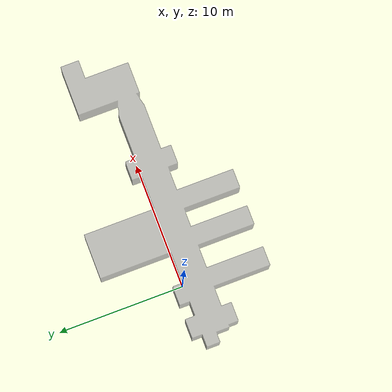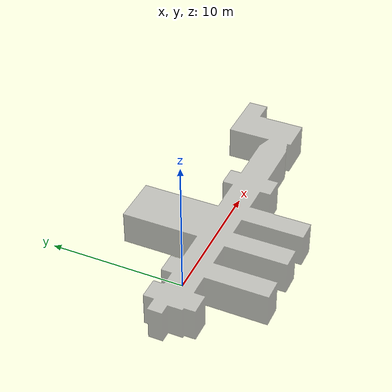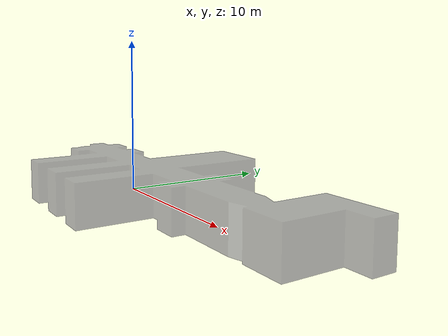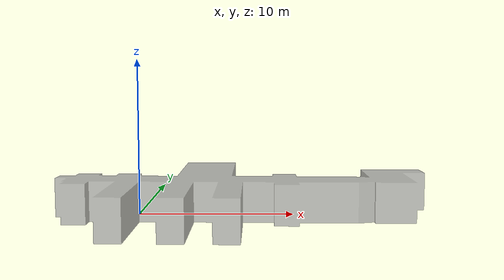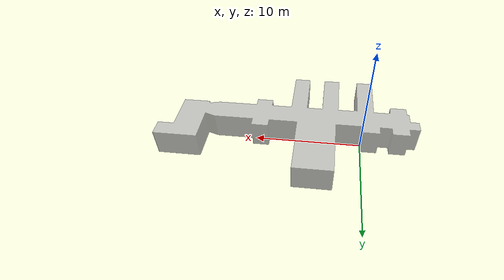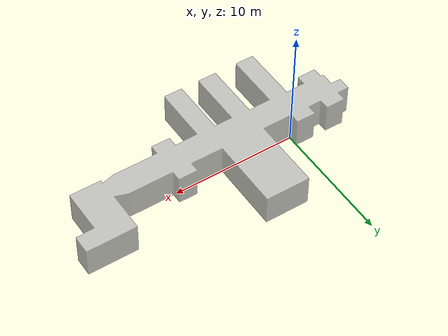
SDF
<?xml version="1.0" ?>
<sdf version="1.4">
  <model name="lab_with_windows">
    <static>true</static>
    <link name="link">
      <inertial>
        <mass>1000</mass>
      </inertial>
      <collision name="collision">
        <geometry>
          <mesh>
            <uri>model://lab_with_windows/meshes/lab_with_windows.stl</uri>
          </mesh>
        </geometry>
      </collision>
      <visual name="visual">
        <transparency>0.2</transparency>
        <geometry>
          <mesh>
            <uri>model://lab_with_windows/meshes/lab_with_windows.stl</uri>
          </mesh>
        </geometry>
      </visual>
    </link>
  </model>
</sdf>
